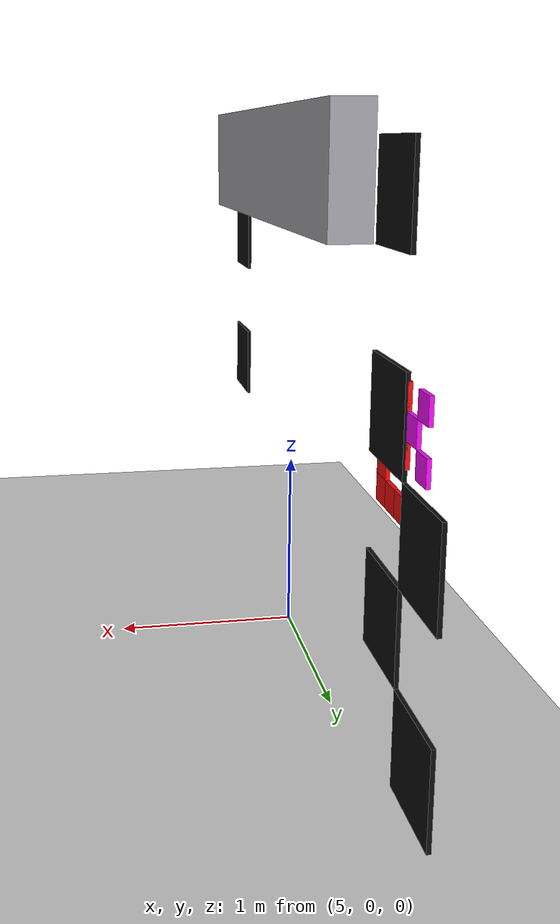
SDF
<sdf version="1.6">
 <world name="collab_workshop">
  <include><uri>model://ground_plane</uri></include>
  <include><uri>model://sun</uri></include>
  <model name="wall_east_lintel">
   <pose>5.1 0 2.7 0 0 0</pose>
   <static>true</static>
   <link name="link">
    <visual name="visual">
     <geometry><box><size>0.2 3.0 0.6</size></box></geometry>
     <material><ambient>0.66 0.66 0.69 1</ambient><diffuse>0.66 0.66 0.69 1</diffuse></material>
    </visual>
    <collision name="collision"><geometry><box><size>0.2 3.0 0.6</size></box></geometry></collision>
   </link>
  </model>
  <model name="east_a_tile_2_5">
   <pose>4.98 -1.725 1.275 0 0 0.0</pose>
   <static>true</static>
   <link name="link">
    <visual name="visual">
     <geometry><box><size>0.02 0.45 0.45</size></box></geometry>
     <material><ambient>0.05 0.05 0.05 1</ambient><diffuse>0.05 0.05 0.05 1</diffuse></material>
    </visual>
   </link>
  </model>
  <model name="east_a_tile_4_5">
   <pose>4.98 -1.725 2.175 0 0 0.0</pose>
   <static>true</static>
   <link name="link">
    <visual name="visual">
     <geometry><box><size>0.02 0.45 0.45</size></box></geometry>
     <material><ambient>0.05 0.05 0.05 1</ambient><diffuse>0.05 0.05 0.05 1</diffuse></material>
    </visual>
   </link>
  </model>
  <model name="east_b_tile_0_1">
   <pose>4.98 2.175 0.3749999999999999 0 0 0.0</pose>
   <static>true</static>
   <link name="link">
    <visual name="visual">
     <geometry><box><size>0.02 0.45 0.45</size></box></geometry>
     <material><ambient>0.05 0.05 0.05 1</ambient><diffuse>0.05 0.05 0.05 1</diffuse></material>
    </visual>
   </link>
  </model>
  <model name="east_b_tile_1_0">
   <pose>4.98 1.725 0.8249999999999998 0 0 0.0</pose>
   <static>true</static>
   <link name="link">
    <visual name="visual">
     <geometry><box><size>0.02 0.45 0.45</size></box></geometry>
     <material><ambient>0.05 0.05 0.05 1</ambient><diffuse>0.05 0.05 0.05 1</diffuse></material>
    </visual>
   </link>
  </model>
  <model name="east_b_tile_2_1">
   <pose>4.98 2.175 1.275 0 0 0.0</pose>
   <static>true</static>
   <link name="link">
    <visual name="visual">
     <geometry><box><size>0.02 0.45 0.45</size></box></geometry>
     <material><ambient>0.05 0.05 0.05 1</ambient><diffuse>0.05 0.05 0.05 1</diffuse></material>
    </visual>
   </link>
  </model>
  <model name="east_b_tile_3_0">
   <pose>4.98 1.725 1.725 0 0 0.0</pose>
   <static>true</static>
   <link name="link">
    <visual name="visual">
     <geometry><box><size>0.02 0.45 0.45</size></box></geometry>
     <material><ambient>0.05 0.05 0.05 1</ambient><diffuse>0.05 0.05 0.05 1</diffuse></material>
    </visual>
   </link>
  </model>
  <model name="east_b_tile_5_0">
   <pose>4.98 1.725 2.625 0 0 0.0</pose>
   <static>true</static>
   <link name="link">
    <visual name="visual">
     <geometry><box><size>0.02 0.45 0.45</size></box></geometry>
     <material><ambient>0.05 0.05 0.05 1</ambient><diffuse>0.05 0.05 0.05 1</diffuse></material>
    </visual>
   </link>
  </model>
  <model name="fac_letter_5_0_1">
   <pose>4.97 2.1300000000000003 1.85 0 0 0.0</pose>
   <static>true</static>
   <link name="link">
    <visual name="visual">
     <geometry><box><size>0.02 0.12 0.12</size></box></geometry>
     <material><ambient>0.98 0.049 0.98 1</ambient><diffuse>0.98 0.049 0.98 1</diffuse></material>
    </visual>
   </link>
  </model>
  <model name="fac_letter_5_1_2">
   <pose>4.97 2.0100000000000002 1.73 0 0 0.0</pose>
   <static>true</static>
   <link name="link">
    <visual name="visual">
     <geometry><box><size>0.02 0.12 0.12</size></box></geometry>
     <material><ambient>0.98 0.049 0.98 1</ambient><diffuse>0.98 0.049 0.98 1</diffuse></material>
    </visual>
   </link>
  </model>
  <model name="fac_letter_5_2_1">
   <pose>4.97 2.1300000000000003 1.61 0 0 0.0</pose>
   <static>true</static>
   <link name="link">
    <visual name="visual">
     <geometry><box><size>0.02 0.12 0.12</size></box></geometry>
     <material><ambient>0.98 0.049 0.98 1</ambient><diffuse>0.98 0.049 0.98 1</diffuse></material>
    </visual>
   </link>
  </model>
  <model name="fac_letter_6_0_0">
   <pose>4.97 1.8900000000000001 1.85 0 0 0.0</pose>
   <static>true</static>
   <link name="link">
    <visual name="visual">
     <geometry><box><size>0.02 0.12 0.12</size></box></geometry>
     <material><ambient>0.98 0.049 0.049 1</ambient><diffuse>0.98 0.049 0.049 1</diffuse></material>
    </visual>
   </link>
  </model>
  <model name="fac_letter_6_0_2">
   <pose>4.97 1.65 1.85 0 0 0.0</pose>
   <static>true</static>
   <link name="link">
    <visual name="visual">
     <geometry><box><size>0.02 0.12 0.12</size></box></geometry>
     <material><ambient>0.98 0.049 0.049 1</ambient><diffuse>0.98 0.049 0.049 1</diffuse></material>
    </visual>
   </link>
  </model>
  <model name="fac_letter_6_1_0">
   <pose>4.97 1.8900000000000001 1.73 0 0 0.0</pose>
   <static>true</static>
   <link name="link">
    <visual name="visual">
     <geometry><box><size>0.02 0.12 0.12</size></box></geometry>
     <material><ambient>0.98 0.049 0.049 1</ambient><diffuse>0.98 0.049 0.049 1</diffuse></material>
    </visual>
   </link>
  </model>
  <model name="fac_letter_6_1_2">
   <pose>4.97 1.65 1.73 0 0 0.0</pose>
   <static>true</static>
   <link name="link">
    <visual name="visual">
     <geometry><box><size>0.02 0.12 0.12</size></box></geometry>
     <material><ambient>0.98 0.049 0.049 1</ambient><diffuse>0.98 0.049 0.049 1</diffuse></material>
    </visual>
   </link>
  </model>
  <model name="fac_letter_6_2_0">
   <pose>4.97 1.8900000000000001 1.61 0 0 0.0</pose>
   <static>true</static>
   <link name="link">
    <visual name="visual">
     <geometry><box><size>0.02 0.12 0.12</size></box></geometry>
     <material><ambient>0.98 0.049 0.049 1</ambient><diffuse>0.98 0.049 0.049 1</diffuse></material>
    </visual>
   </link>
  </model>
  <model name="fac_letter_6_2_1">
   <pose>4.97 1.77 1.61 0 0 0.0</pose>
   <static>true</static>
   <link name="link">
    <visual name="visual">
     <geometry><box><size>0.02 0.12 0.12</size></box></geometry>
     <material><ambient>0.98 0.049 0.049 1</ambient><diffuse>0.98 0.049 0.049 1</diffuse></material>
    </visual>
   </link>
  </model>
  <model name="fac_letter_6_2_2">
   <pose>4.97 1.65 1.61 0 0 0.0</pose>
   <static>true</static>
   <link name="link">
    <visual name="visual">
     <geometry><box><size>0.02 0.12 0.12</size></box></geometry>
     <material><ambient>0.98 0.049 0.049 1</ambient><diffuse>0.98 0.049 0.049 1</diffuse></material>
    </visual>
   </link>
  </model>
  <model name="fac_letter_6_3_2">
   <pose>4.97 1.65 1.4900000000000002 0 0 0.0</pose>
   <static>true</static>
   <link name="link">
    <visual name="visual">
     <geometry><box><size>0.02 0.12 0.12</size></box></geometry>
     <material><ambient>0.98 0.049 0.049 1</ambient><diffuse>0.98 0.049 0.049 1</diffuse></material>
    </visual>
   </link>
  </model>
  <model name="fac_letter_6_4_0">
   <pose>4.97 1.8900000000000001 1.37 0 0 0.0</pose>
   <static>true</static>
   <link name="link">
    <visual name="visual">
     <geometry><box><size>0.02 0.12 0.12</size></box></geometry>
     <material><ambient>0.98 0.049 0.049 1</ambient><diffuse>0.98 0.049 0.049 1</diffuse></material>
    </visual>
   </link>
  </model>
  <model name="fac_letter_6_4_1">
   <pose>4.97 1.77 1.37 0 0 0.0</pose>
   <static>true</static>
   <link name="link">
    <visual name="visual">
     <geometry><box><size>0.02 0.12 0.12</size></box></geometry>
     <material><ambient>0.98 0.049 0.049 1</ambient><diffuse>0.98 0.049 0.049 1</diffuse></material>
    </visual>
   </link>
  </model>
  <model name="fac_letter_6_4_2">
   <pose>4.97 1.65 1.37 0 0 0.0</pose>
   <static>true</static>
   <link name="link">
    <visual name="visual">
     <geometry><box><size>0.02 0.12 0.12</size></box></geometry>
     <material><ambient>0.98 0.049 0.049 1</ambient><diffuse>0.98 0.049 0.049 1</diffuse></material>
    </visual>
   </link>
  </model>
 </world>
</sdf>
